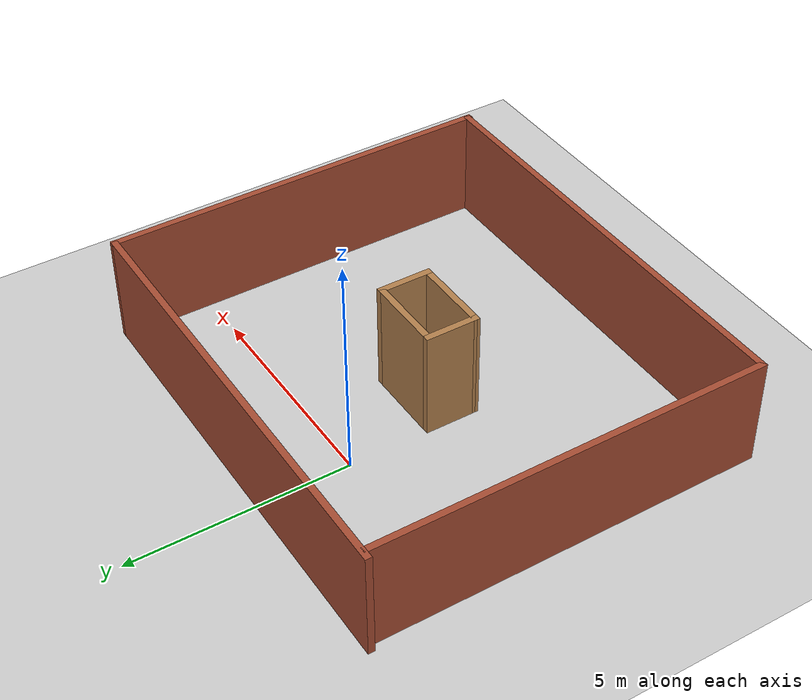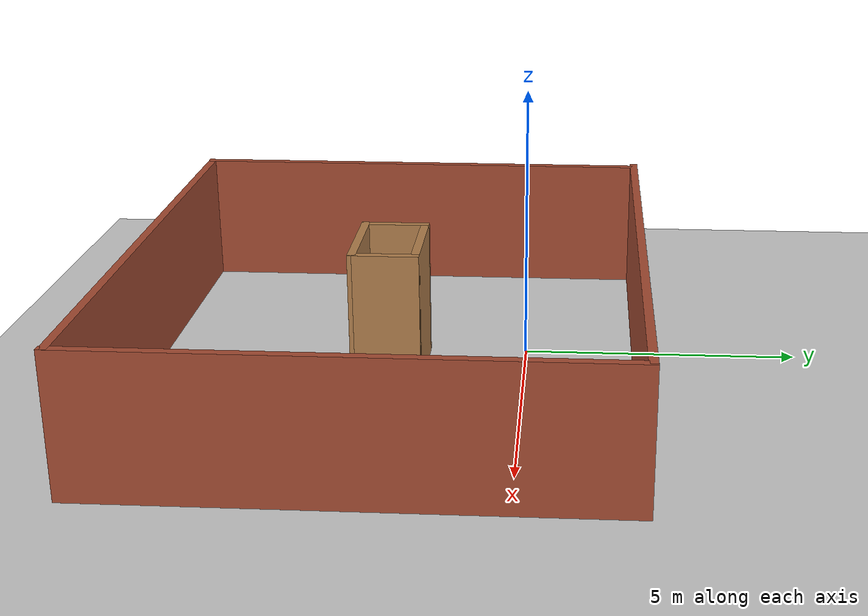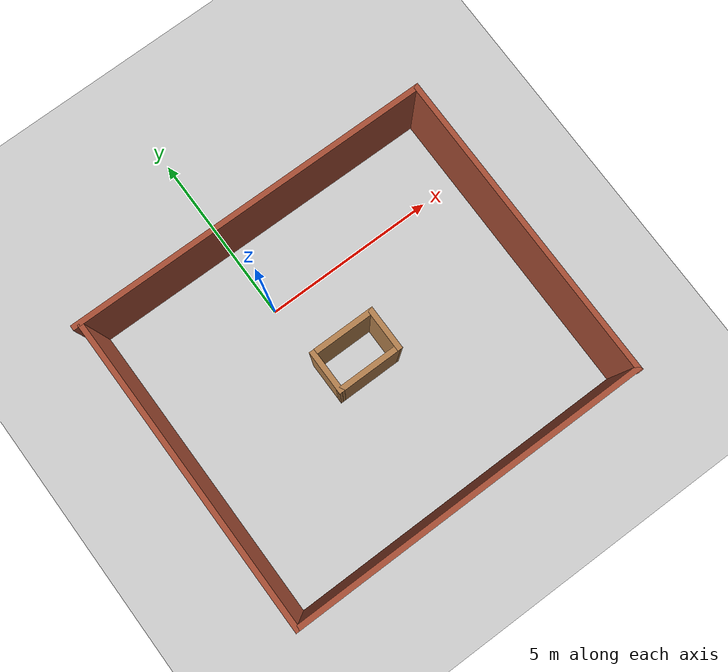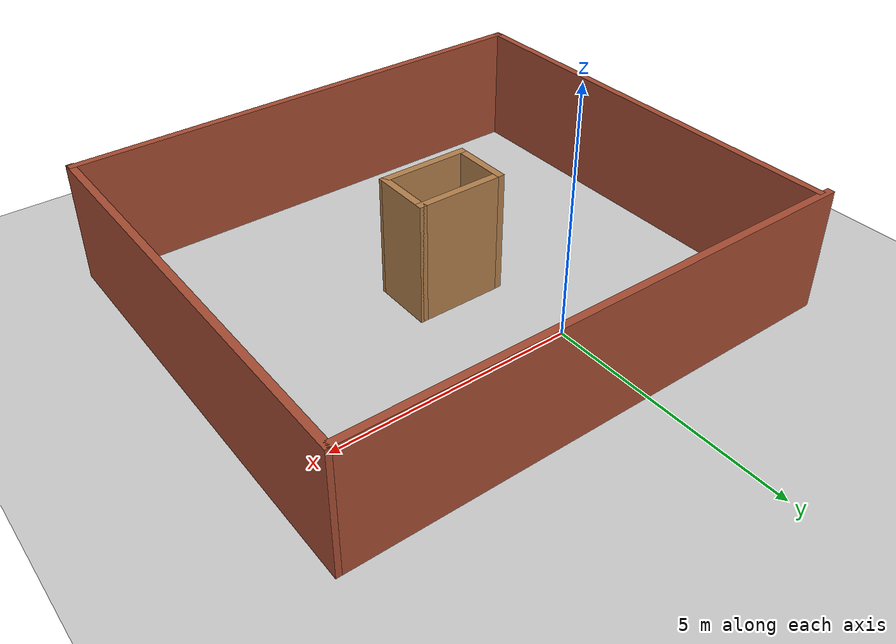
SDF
<sdf version="1.6">
 <world name="default">
  <light name="sun" type="directional">
   <pose>0 0 10 0 -0 0</pose>
   <diffuse>0.8 0.8 0.8 1</diffuse>
   <specular>0.2 0.2 0.2 1</specular>
   <attenuation>
    <range>1000</range>
    <constant>0.9</constant>
    <linear>0.01</linear>
    <quadratic>0.001</quadratic>
   </attenuation>
   <direction>-0.5 0.1 -0.9</direction>
  </light>
  <model name="ground_plane">
   <static>1</static>
   <link name="link">
    <collision name="collision">
     <geometry><plane><normal>0 0 1</normal><size>100 100</size></plane></geometry>
     <surface><friction><ode><mu>100</mu><mu2>50</mu2></ode></friction></surface>
    </collision>
    <visual name="visual">
     <cast_shadows>0</cast_shadows>
     <geometry><plane><normal>0 0 1</normal><size>100 100</size></plane></geometry>
     <material>
      <script><uri>file://media/materials/scripts/gazebo.material</uri><name>Gazebo/Grey</name></script>
     </material>
    </visual>
   </link>
  </model>
  <gravity>0 0 -9.8</gravity>
  <magnetic_field>6e-06 2.3e-05 -4.2e-05</magnetic_field>
  <atmosphere type="adiabatic"/>
  <physics name="default_physics" default="0" type="ode">
   <max_step_size>0.001</max_step_size>
   <real_time_factor>1</real_time_factor>
   <real_time_update_rate>1000</real_time_update_rate>
  </physics>
  <scene><ambient>0.4 0.4 0.4 1</ambient><background>0.7 0.7 0.7 1</background><shadows>1</shadows></scene>
  <spherical_coordinates>
   <surface_model>EARTH_WGS84</surface_model>
   <latitude_deg>0</latitude_deg>
   <longitude_deg>0</longitude_deg>
   <elevation>0</elevation>
   <heading_deg>0</heading_deg>
  </spherical_coordinates>
  <model name="maze">
   <pose>0.949323 -2.37838 0 0 -0 0</pose>
   <link name="Wall_0">
    <collision name="Wall_0_Collision">
     <geometry><box><size>10.4251 0.15 2.5</size></box></geometry>
     <pose>0 0 1.25 0 -0 0</pose>
    </collision>
    <visual name="Wall_0_Visual">
     <pose>0 0 1.25 0 -0 0</pose>
     <geometry><box><size>10.4251 0.15 2.5</size></box></geometry>
     <material>
      <script><uri>file://media/materials/scripts/gazebo.material</uri><name>Gazebo/Bricks</name></script>
      <ambient>1 1 1 1</ambient>
     </material>
     <meta><layer>0</layer></meta>
    </visual>
    <pose>-0.017236 4.43185 0 0 -0 -0.006809</pose>
   </link>
   <link name="Wall_11">
    <collision name="Wall_11_Collision">
     <geometry><box><size>10.2676 0.15 2.5</size></box></geometry>
     <pose>0 0 1.25 0 -0 0</pose>
    </collision>
    <visual name="Wall_11_Visual">
     <pose>0 0 1.25 0 -0 0</pose>
     <geometry><box><size>10.2676 0.15 2.5</size></box></geometry>
     <material>
      <script><uri>file://media/materials/scripts/gazebo.material</uri><name>Gazebo/Bricks</name></script>
      <ambient>1 1 1 1</ambient>
     </material>
     <meta><layer>0</layer></meta>
    </visual>
    <pose>0.082325 -4.44983 0 0 -0 -3.13818</pose>
   </link>
   <link name="Wall_16">
    <collision name="Wall_16_Collision">
     <geometry><box><size>9 0.15 2.5</size></box></geometry>
     <pose>0 0 1.25 0 -0 0</pose>
    </collision>
    <visual name="Wall_16_Visual">
     <pose>0 0 1.25 0 -0 0</pose>
     <geometry><box><size>9 0.15 2.5</size></box></geometry>
     <material>
      <script><uri>file://media/materials/scripts/gazebo.material</uri><name>Gazebo/Bricks</name></script>
      <ambient>1 1 1 1</ambient>
     </material>
     <meta><layer>0</layer></meta>
    </visual>
    <pose>5.15519 -0.028135 0 0 -0 -1.5708</pose>
   </link>
   <link name="Wall_2">
    <collision name="Wall_2_Collision">
     <geometry><box><size>1.75 0.15 2.5</size></box></geometry>
     <pose>0 0 1.25 0 -0 0</pose>
    </collision>
    <visual name="Wall_2_Visual">
     <pose>0 0 1.25 0 -0 0</pose>
     <geometry><box><size>1.75 0.15 2.5</size></box></geometry>
     <material>
      <script><uri>file://media/materials/scripts/gazebo.material</uri><name>Gazebo/Wood</name></script>
      <ambient>1 1 1 1</ambient>
     </material>
     <meta><layer>0</layer></meta>
    </visual>
    <pose>0.036765 0.507846 0 0 -0 0</pose>
   </link>
   <link name="Wall_22">
    <collision name="Wall_22_Collision">
     <geometry><box><size>9 0.15 2.5</size></box></geometry>
     <pose>0 0 1.25 0 -0 0</pose>
    </collision>
    <visual name="Wall_22_Visual">
     <pose>0 0 1.25 0 -0 0</pose>
     <geometry><box><size>9 0.15 2.5</size></box></geometry>
     <material>
      <script><uri>file://media/materials/scripts/gazebo.material</uri><name>Gazebo/Bricks</name></script>
      <ambient>1 1 1 1</ambient>
     </material>
     <meta><layer>0</layer></meta>
    </visual>
    <pose>-5.01093 -0.042078 0 0 -0 1.5708</pose>
   </link>
   <link name="Wall_24">
    <collision name="Wall_24_Collision">
     <geometry><box><size>1.25 0.15 2.5</size></box></geometry>
     <pose>0 0 1.25 0 -0 0</pose>
    </collision>
    <visual name="Wall_24_Visual">
     <pose>0 0 1.25 0 -0 0</pose>
     <geometry><box><size>1.25 0.15 2.5</size></box></geometry>
     <material>
      <script><uri>file://media/materials/scripts/gazebo.material</uri><name>Gazebo/Wood</name></script>
      <ambient>1 1 1 1</ambient>
     </material>
     <meta><layer>0</layer></meta>
    </visual>
    <pose>-0.905418 -0.045051 0 0 -0 -1.5708</pose>
   </link>
   <link name="Wall_27">
    <collision name="Wall_27_Collision">
     <geometry><box><size>1.25 0.15 2.5</size></box></geometry>
     <pose>0 0 1.25 0 -0 0</pose>
    </collision>
    <visual name="Wall_27_Visual">
     <pose>0 0 1.25 0 -0 0</pose>
     <geometry><box><size>1.25 0.15 2.5</size></box></geometry>
     <material>
      <script><uri>file://media/materials/scripts/gazebo.material</uri><name>Gazebo/Wood</name></script>
      <ambient>1 1 1 1</ambient>
     </material>
     <meta><layer>0</layer></meta>
    </visual>
    <pose>0.836764 -0.042154 0 0 -0 -1.5708</pose>
   </link>
   <link name="Wall_28">
    <collision name="Wall_28_Collision">
     <geometry><box><size>1.89219 0.15 2.5</size></box></geometry>
     <pose>0 0 1.25 0 -0 0</pose>
    </collision>
    <visual name="Wall_28_Visual">
     <pose>0 0 1.25 0 -0 0</pose>
     <geometry><box><size>1.89219 0.15 2.5</size></box></geometry>
     <material>
      <script><uri>file://media/materials/scripts/gazebo.material</uri><name>Gazebo/Wood</name></script>
      <ambient>1 1 1 1</ambient>
     </material>
     <meta><layer>0</layer></meta>
    </visual>
    <pose>-0.034327 -0.593602 0 0 -0 -3.13993</pose>
   </link>
   <static>1</static>
  </model>
 </world>
</sdf>
